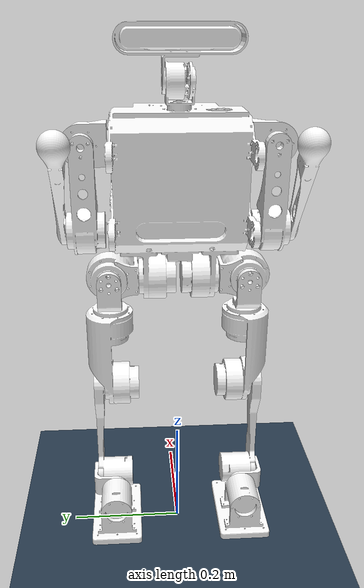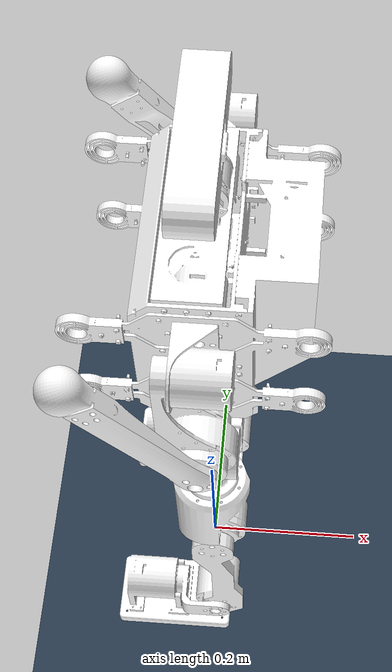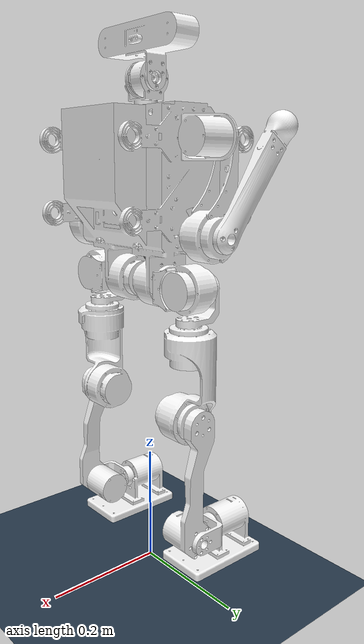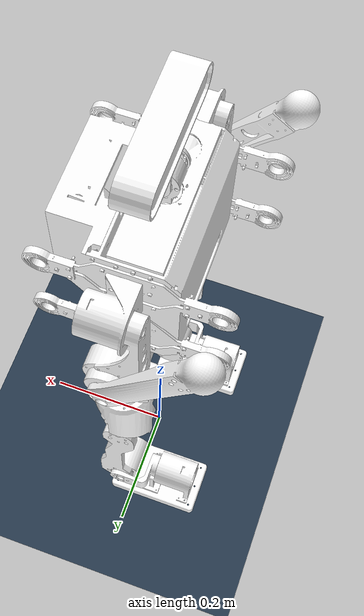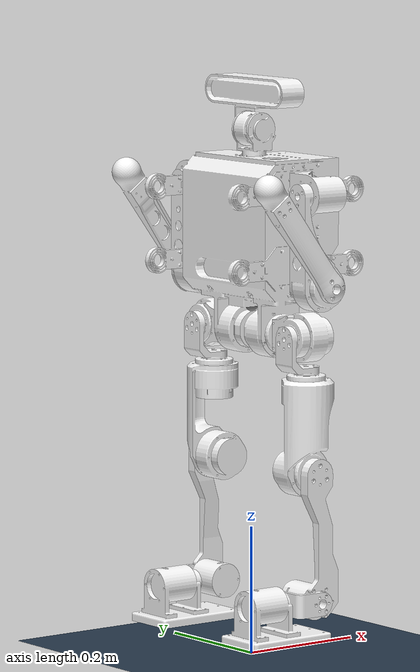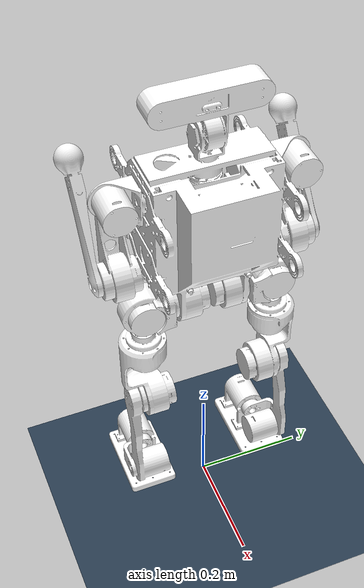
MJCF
<mujoco model="MOSC">
    <compiler angle="radian" />
    <size njmax="500" nconmax="100" />
    <asset>
        <texture name="texplane" type="2d" builtin="checker" rgb1=".2 .3 .4" rgb2=".1 0.15 0.2" width="512" height="512" mark="cross" markrgb=".8 .8 .8" />
        <material name="matplane" reflectance="0." texture="texplane" texrepeat="1 1" texuniform="true" />
        <mesh name="body" file="meshes/body_LowMesh.STL" />
        <mesh name="neck" file="meshes/neck.STL" />
        <mesh name="head" file="meshes/head.STL" />
        <mesh name="Rshoulder" file="meshes/Rshoulder.STL" />
        <mesh name="Rarm" file="meshes/Rarm.STL" />
        <mesh name="Rhand" file="meshes/Rhand.STL" />
        <mesh name="Lshoulder" file="meshes/Lshoulder.STL" />
        <mesh name="Larm" file="meshes/Larm.STL" />
        <mesh name="Lhand" file="meshes/Lhand.STL" />
        <mesh name="Rhip" file="meshes/Rhip.STL" />
        <mesh name="Rlap" file="meshes/Rlap.STL" />
        <mesh name="Rleg1" file="meshes/Rleg1.STL" />
        <mesh name="Rleg2" file="meshes/Rleg2.STL" />
        <mesh name="Rankle" file="meshes/Rankle.STL" />
        <mesh name="Rfoot" file="meshes/Rfoot.STL" />
        <mesh name="Lhip" file="meshes/Lhip.STL" />
        <mesh name="Llap" file="meshes/Llap.STL" />
        <mesh name="Lleg1" file="meshes/Lleg1.STL" />
        <mesh name="Lleg2" file="meshes/Lleg2.STL" />
        <mesh name="Lankle" file="meshes/Lankle.STL" />
        <mesh name="Lfoot" file="meshes/Lfoot.STL" />
    </asset>
    <default>
		<joint limited="false" />
		<motor ctrllimited="true" />
		<geom condim="4" contype="1" conaffinity="15" friction="0.9 0.2 0.2" />
	</default>
    <worldbody>
    <light directional="true" diffuse=".4 .4 .4" specular="0.1 0.1 0.1" pos="0 0 5.0" dir="0 0 -1" castshadow="false" />
	<light directional="true" diffuse=".6 .6 .6" specular="0.2 0.2 0.2" pos="0 0 4" dir="0 0 -1" />
	<geom name="ground" type="plane" size="0 0 1" pos="0.001 0 0" quat="1 0 0 0" material="matplane" condim="1" conaffinity="15" />

    <body name="base_link" pos="0.0 0.0 0.55" quat="0 0 0 1">
        <joint type='ball' limited='false' />
        <site name='imu' size='0.01' pos='0.0 0 0.0'/>
        <joint type='slide' axis='1 0 0' limited='false' />
        <joint type='slide' axis='0 1 0' limited='false' />
        <joint type='slide' axis='0 0 1' limited='false' />
        <geom type="mesh" rgba="1 1 1 1" mesh="body" />
        <geom pos="-0.00499961 0 0.2301" quat="0.707107 0 0 0.707107" type="mesh" rgba="1 1 1 1" mesh="neck" />
        <geom pos="-0.00499961 -0.0191493 0.2726" quat="0.707107 0.707107 0 0" type="mesh" rgba="1 1 1 1" mesh="head" />
        <geom pos="-0.01 -0.101 0.1821" quat="0 0 0.707107 0.707107" type="mesh" rgba="1 1 1 1" mesh="Rshoulder" />
        <geom pos="0.0109999 -0.15 0.182048" quat="0 -0.707107 0 0.707107" type="mesh" rgba="1 1 1 1" mesh="Rarm" />
        <geom pos="-0.0100001 -0.18135 0.0420479" quat="0.316831 0.316831 0.632153 -0.632153" type="mesh" rgba="1 1 1 1" mesh="Rhand" />
        <geom pos="-0.01 0.101 0.1821" quat="0 0 0.707107 0.707107" type="mesh" rgba="1 1 1 1" mesh="Lshoulder" />
        <geom pos="0.011 0.15 0.1821" quat="-0.707107 0 0.707107 0" type="mesh" rgba="1 1 1 1" mesh="Larm" />
        <geom pos="-0.01 0.18135 0.0421" quat="0.316831 0.316831 0.632153 -0.632153" type="mesh" rgba="1 1 1 1" mesh="Lhand" />

        <body name="Lhip" pos="-0.015 0.0672 -0.0399" quat="0 0 0.707107 0.707107">
            <inertial pos="0.00046506 4.8751e-06 0.043645" quat="0.998699 0.00022094 -0.0506725 -0.00563274" mass="0.68953" diaginertia="0.000521464 0.000513649 0.000411857" />
            <joint name="left_hip_pitch" pos="0 0 0" axis="0 0 -1" />
            <geom type="mesh" rgba="1 1 1 1" mesh="Lhip" contype="0" conaffinity="0"/>
            <body name="Llap" pos="-0.0312 0 0.0493" quat="0.707107 0 0.707107 0">
                <inertial pos="0 -0.03086 0.0069068" quat="0.888924 0.458055 0 0" mass="0.12125" diaginertia="9.9252e-05 9.7938e-05 3.1213e-05" />
                <joint name="left_hip_roll" pos="0 0 0" axis="0 0 -1" />
                <geom type="mesh" rgba="1 1 1 1" mesh="Llap" contype="0" conaffinity="0"/>
                <body name="Lleg1" pos="0 -0.057 0.032" quat="0 0 -0.707107 -0.707107">
                    <inertial pos="-0.00334622 -0.00180411 -0.0895144" quat="0.927406 0.0233212 0.0606357 0.368371" mass="1.39974" diaginertia="0.00599321 0.00589066 0.00101782" />
                    <joint name="left_hip_yaw" pos="0 0 0" axis="0 0 -1" />
                    <geom type="mesh" rgba="1 1 1 1" mesh="Lleg1" />
                    <body name="Lleg2" pos="0.0162 0 -0.1532" quat="0.5 0.5 0.5 0.5">
                        <inertial pos="0.0025362 -0.14342 -0.0055217" quat="0.622905 0.723389 0.22658 -0.193284" mass="0.66458" diaginertia="0.00438854 0.00431768 0.000284441" />
                        <joint name="left_knee" pos="0 0 0" axis="0 0 -1" />
                        <geom type="mesh" rgba="1 1 1 1" mesh="Lleg2" contype="0" conaffinity="0"/>
                        <body name="Lankle" pos="0 -0.2 0.0098">
                            <inertial pos="-0.026526 0 -0.0036121" quat="0.628892 0.323256 0.323256 0.628892" mass="0.099798" diaginertia="7.8396e-05 7.63351e-05 2.41339e-05" />
                            <joint name="left_ankle_pitch" pos="0 0 0" axis="0 0 -1" />
                            <geom type="mesh" rgba="1 1 1 1" mesh="Lankle" contype="0" conaffinity="0"/>
                            <body name="Lfoot" pos="-0.0545 0 -0.026" quat="0.707107 0 0.707107 0">
                                <inertial pos="0 -0.0165148 -0.0227182" quat="0.973791 0.227447 0 0" mass="0.644241" diaginertia="0.000982839 0.000902925 0.000553376" />
                                <joint name="left_ankle_roll" pos="0 0 0" axis="0 0 -1" />
                                <geom type="mesh" rgba="1 1 1 1" mesh="Lfoot" />
                            </body>
                        </body>
                    </body>
                </body>
            </body>
        </body>

        <body name="Rhip" pos="-0.015 -0.0672 -0.0399" quat="0 0 0.707107 0.707107">
            <inertial pos="0.00046534 -4.8738e-06 -0.043634" quat="0.998704 0.00021969 0.0505891 0.00561917" mass="0.68971" diaginertia="0.000521793 0.000513959 0.000411928" />
            <joint name="right_hip_pitch" pos="0 0 0" axis="0 0 1" />
            <geom type="mesh" rgba="1 1 1 1" mesh="Rhip" contype="0" conaffinity="0"/>
            <body name="Rlap" pos="-0.0312 0 -0.0493" quat="0.707107 0 0.707107 0">
                <inertial pos="0 -0.03086 0.0069068" quat="0.888924 0.458055 0 0" mass="0.12125" diaginertia="9.9252e-05 9.7938e-05 3.1213e-05" />
                <joint name="right_hip_roll" pos="0 0 0" axis="0 0 -1" />
                <geom type="mesh" rgba="1 1 1 1" mesh="Rlap" contype="0" conaffinity="0"/>
                <body name="Rleg1" pos="0 -0.057 0.032" quat="0 0 0.707107 0.707107">
                    <inertial pos="0.0033299 -0.00182044 -0.0895096" quat="0.927379 0.0234381 -0.0606723 -0.368425" mass="1.39974" diaginertia="0.00599239 0.00589001 0.00101771" />
                    <joint name="right_hip_yaw" pos="0 0 0" axis="0 0 -1" />
                    <geom type="mesh" rgba="1 1 1 1" mesh="Rleg1" />
                    <body name="Rleg2" pos="-0.0162 0 -0.1532" quat="0.5 0.5 -0.5 -0.5">
                        <inertial pos="-0.0025189 -0.14339 -0.0055217" quat="0.622039 0.722366 -0.229813 0.196066" mass="0.66458" diaginertia="0.00438581 0.00431472 0.00028574" />
                        <joint name="right_knee" pos="0 0 0" axis="0 0 -1" />
                        <geom type="mesh" rgba="1 1 1 1" mesh="Rleg2" contype="0" conaffinity="0"/>
                        <body name="Rankle" pos="0 -0.2 0.0098">
                            <inertial pos="0.026526 0 -0.0036121" quat="0.323256 0.628892 0.628892 0.323256" mass="0.099798" diaginertia="7.8396e-05 7.63351e-05 2.41339e-05" />
                            <joint name="right_ankle_pitch" pos="0 0 0" axis="0 0 -1" />
                            <geom type="mesh" rgba="1 1 1 1" mesh="Rankle" contype="0" conaffinity="0"/>
                            <body name="Rfoot" pos="0.0545 0 -0.026" quat="0.707107 0 0.707107 0">
                                <inertial pos="0 -0.0165148 0.0227182" quat="0.973791 -0.227447 0 0" mass="0.644241" diaginertia="0.000982839 0.000902925 0.000553376" />
                                <joint name="right_ankle_roll" pos="0 0 0" axis="0 0 1" />
                                <geom type="mesh" rgba="1 1 1 1" mesh="Rfoot"/>
                            </body>
                        </body>
                    </body>
                </body>
            </body>
        </body>

    </body>
    </worldbody>
	    <actuator>
        <motor name="left_hip_pitch_joint" joint="left_hip_pitch" gear="1" ctrllimited="true" ctrlrange="-200 200" />
 		<motor name="left_hip_roll_joint" joint="left_hip_roll" gear="1" ctrllimited="true" ctrlrange="-200 200" />
 		<motor name="left_hip_yaw_joint" joint="left_hip_yaw" gear="1" ctrllimited="true" ctrlrange="-200 200" />
 		<motor name="left_knee_joint" joint="left_knee" gear="1" ctrllimited="true" ctrlrange="-200 200" />
 		<motor name="left_ankle_pitch_joint" joint="left_ankle_pitch" gear="1" ctrllimited="true" ctrlrange="-200 200" />
 		<motor name="left_ankle_roll_joint" joint="left_ankle_roll" gear="1" ctrllimited="true" ctrlrange="-200 200" />
 		<motor name="right_hip_pitch_joint" joint="right_hip_pitch" gear="1" ctrllimited="true" ctrlrange="-200 200" />
 		<motor name="right_hip_roll_joint" joint="right_hip_roll" gear="1" ctrllimited="true" ctrlrange="-200 200" />
 		<motor name="right_hip_yaw_joint" joint="right_hip_yaw" gear="1" ctrllimited="true" ctrlrange="-200 200" />
 		<motor name="right_knee_joint" joint="right_knee" gear="1" ctrllimited="true" ctrlrange="-200 200" />
 		<motor name="right_ankle_pitch_joint" joint="right_ankle_pitch" gear="1" ctrllimited="true" ctrlrange="-200 200" />
 		<motor name="right_ankle_roll_joint" joint="right_ankle_roll" gear="1" ctrllimited="true" ctrlrange="-200 200" />
		</actuator>
		<sensor>
		<!-- Position sensors -->
        <actuatorpos name="left_hip_pitch_joint_p" actuator="left_hip_pitch_joint" user="13" noise="1e-3"/>
        <actuatorpos name="right_hip_pitch_joint_p" actuator="right_hip_pitch_joint" user="13" noise="1e-3"/>
        <actuatorpos name="left_hip_roll_joint_p" actuator="left_hip_roll_joint" user="13" noise="1e-3"/>
        <actuatorpos name="right_hip_roll_joint_p" actuator="right_hip_roll_joint" user="13" noise="1e-3"/>
        <actuatorpos name="left_hip_yaw_joint_p" actuator="left_hip_yaw_joint" user="13" noise="1e-3"/>
        <actuatorpos name="right_hip_yaw_joint_p" actuator="right_hip_yaw_joint" user="13" noise="1e-3"/>
        <actuatorpos name="left_knee_joint_p" actuator="left_knee_joint" user="13" noise="1e-3"/>
        <actuatorpos name="right_knee_joint_p" actuator="right_knee_joint" user="13" noise="1e-3"/>
        <actuatorpos name="left_ankle_pitch_joint_p" actuator="left_ankle_pitch_joint" user="13" noise="1e-3"/>
        <actuatorpos name="right_ankle_pitch_joint_p" actuator="right_ankle_pitch_joint" user="13" noise="1e-3"/>
        <actuatorpos name="left_ankle_roll_joint_p" actuator="left_ankle_roll_joint" user="13" noise="1e-3"/>
        <actuatorpos name="right_ankle_roll_joint_p" actuator="right_ankle_roll_joint" user="13" noise="1e-3"/>
		<!-- Velocity sensors -->
        <actuatorvel name="left_hip_pitch_joint_v" actuator="left_hip_pitch_joint" user="13" noise="1e-3"/>
        <actuatorvel name="right_hip_pitch_joint_v" actuator="right_hip_pitch_joint" user="13" noise="1e-3"/>
        <actuatorvel name="left_hip_roll_joint_v" actuator="left_hip_roll_joint" user="13" noise="1e-3"/>
        <actuatorvel name="right_hip_roll_joint_v" actuator="right_hip_roll_joint" user="13" noise="1e-3"/>
        <actuatorvel name="left_hip_yaw_joint_v" actuator="left_hip_yaw_joint" user="13" noise="1e-3"/>
        <actuatorvel name="right_hip_yaw_joint_v" actuator="right_hip_yaw_joint" user="13" noise="1e-3"/>
        <actuatorvel name="left_knee_joint_v" actuator="left_knee_joint" user="13" noise="1e-3"/>
        <actuatorvel name="right_knee_joint_v" actuator="right_knee_joint" user="13" noise="1e-3"/>
        <actuatorvel name="left_ankle_pitch_joint_v" actuator="left_ankle_pitch_joint" user="13" noise="1e-3"/>
        <actuatorvel name="right_ankle_pitch_joint_v" actuator="right_ankle_pitch_joint" user="13" noise="1e-3"/>
        <actuatorvel name="left_ankle_roll_joint_v" actuator="left_ankle_roll_joint" user="13" noise="1e-3"/>
        <actuatorvel name="right_ankle_roll_joint_v" actuator="right_ankle_roll_joint" user="13" noise="1e-3"/>

		<framequat name="orientation" objtype="site" noise="0.001" objname="imu" />
		<framepos name="position" objtype="site" noise="0.001" objname="imu" />
		<gyro name="angular-velocity" site="imu" noise="0.005" cutoff="34.9" />
		<velocimeter name="linear-velocity" site="imu" noise="0.001" cutoff="30" />

	</sensor>
</mujoco>
